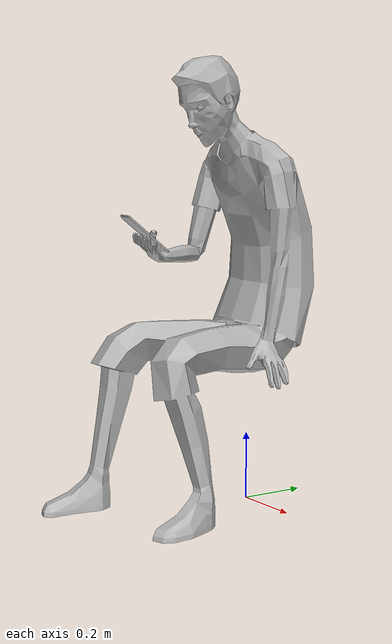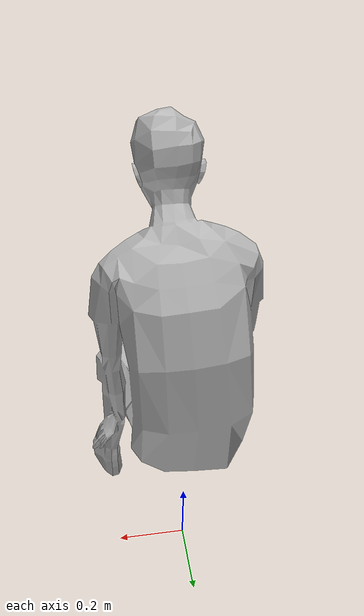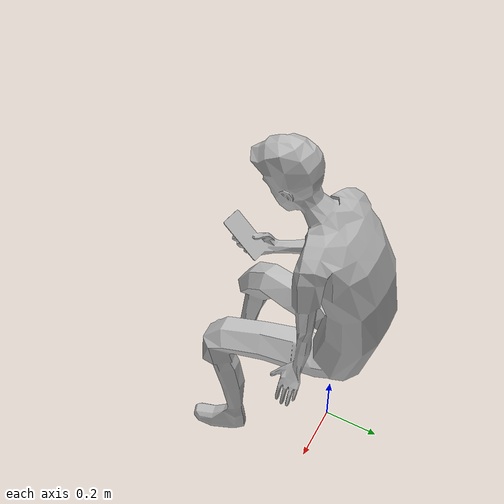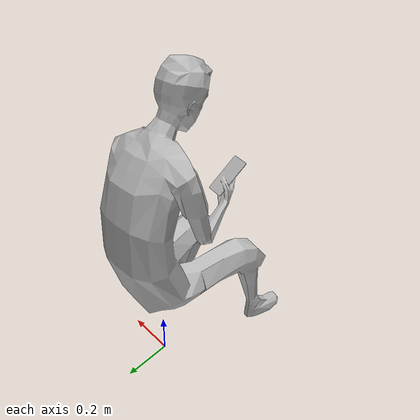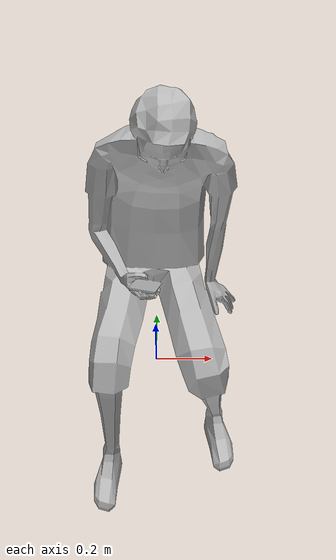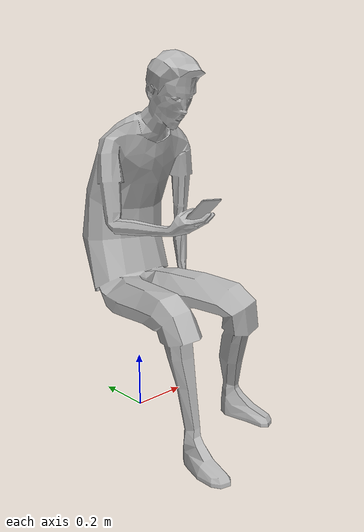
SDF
<?xml version='1.0' encoding='utf-8'?>
<sdf version="1.6">
  <model name="MaleVisitorSit">
   <static>true</static>
    <link name="body">
      <pose>0 0 0 0 0 0</pose>

      <visual name="visual">
        <geometry>
          <mesh>
            <uri>model://MaleVisitorSit/meshes/MaleVisitorSit.obj</uri>
          </mesh>
        </geometry>
      </visual>

      <collision name="collision">
        <geometry>
          <mesh>
            <uri>model://MaleVisitorSit/meshes/MaleVisitorSit_Col.obj</uri>
          </mesh>
        </geometry>
      </collision>

    </link>
  </model>
</sdf>
